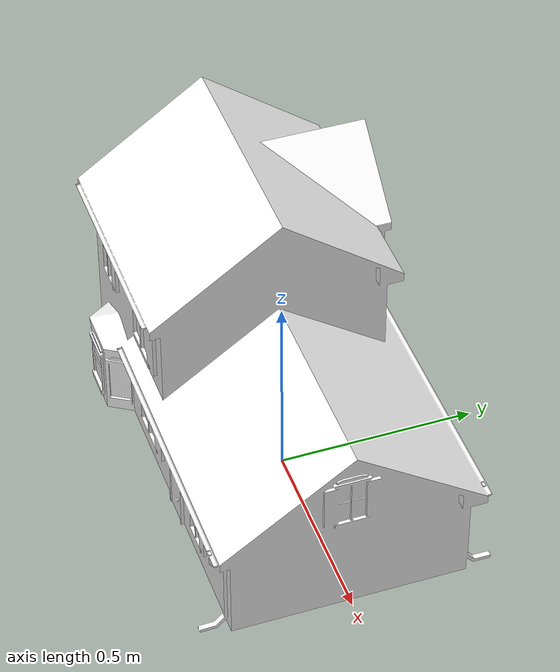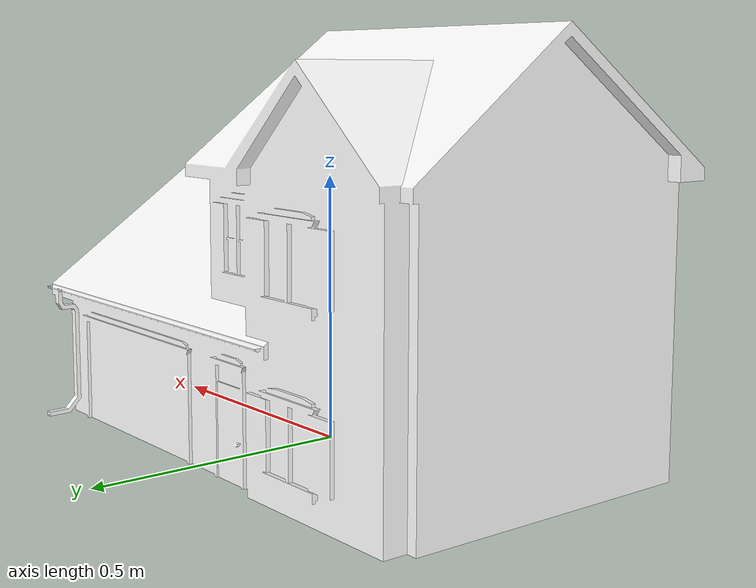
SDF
<?xml version='1.0'?>
<sdf version='1.6'>
  <model name='House_3_4'>
    <link name='link'>
      <pose frame=''>0 0 0 0 -0 0</pose>
      <self_collide>0</self_collide>
      <kinematic>0</kinematic>
      <visual name='visual'>
        <geometry>
          <mesh>
            <uri>model://house_3/meshes/house_3.dae</uri>
            <scale>0.125 0.125 0.125</scale>
          </mesh>
        </geometry>
        <material>
          <script>
            <uri>model://house_3/materials/scripts</uri>
            <uri>model://house_3/materials/textures</uri>
            <name>House_3/Diffuse</name>
          </script>
          <shader type='normal_map_tangent_space'>
            <normal_map>House_3_Normal.png</normal_map>
          </shader>
          <ambient>1 1 1 1</ambient>
          <diffuse>1 1 1 1</diffuse>
          <specular>0 0 0 1</specular>
          <emissive>0 0 0 1</emissive>
        </material>
        <pose frame=''>0 0 0 0 -0 0</pose>
        <cast_shadows>1</cast_shadows>
        <transparency>0</transparency>
      </visual>
      <collision name='collision'>
        <laser_retro>0</laser_retro>
        <max_contacts>10</max_contacts>
        <pose frame=''>0 0 0 0 -0 0</pose>
        <geometry>
          <mesh>
            <uri>/root/.gazebo/models/house_3/meshes/house_3.dae</uri>
          </mesh>
        </geometry>
        <surface>
          <friction>
            <ode>
              <mu>1</mu>
              <mu2>1</mu2>
              <fdir1>0 0 0</fdir1>
              <slip1>0</slip1>
              <slip2>0</slip2>
            </ode>
            <torsional>
              <coefficient>1</coefficient>
              <patch_radius>0</patch_radius>
              <surface_radius>0</surface_radius>
              <use_patch_radius>1</use_patch_radius>
              <ode>
                <slip>0</slip>
              </ode>
            </torsional>
          </friction>
          <bounce>
            <restitution_coefficient>0</restitution_coefficient>
            <threshold>1e+06</threshold>
          </bounce>
          <contact>
            <collide_without_contact>0</collide_without_contact>
            <collide_without_contact_bitmask>1</collide_without_contact_bitmask>
            <collide_bitmask>1</collide_bitmask>
            <ode>
              <soft_cfm>0</soft_cfm>
              <soft_erp>0.2</soft_erp>
              <kp>1e+13</kp>
              <kd>1</kd>
              <max_vel>0.01</max_vel>
              <min_depth>0</min_depth>
            </ode>
            <bullet>
              <split_impulse>1</split_impulse>
              <split_impulse_penetration_threshold>-0.01</split_impulse_penetration_threshold>
              <soft_cfm>0</soft_cfm>
              <soft_erp>0.2</soft_erp>
              <kp>1e+13</kp>
              <kd>1</kd>
            </bullet>
          </contact>
        </surface>
      </collision>
    </link>
    <static>1</static>
    <allow_auto_disable>1</allow_auto_disable>
  </model>
</sdf>
